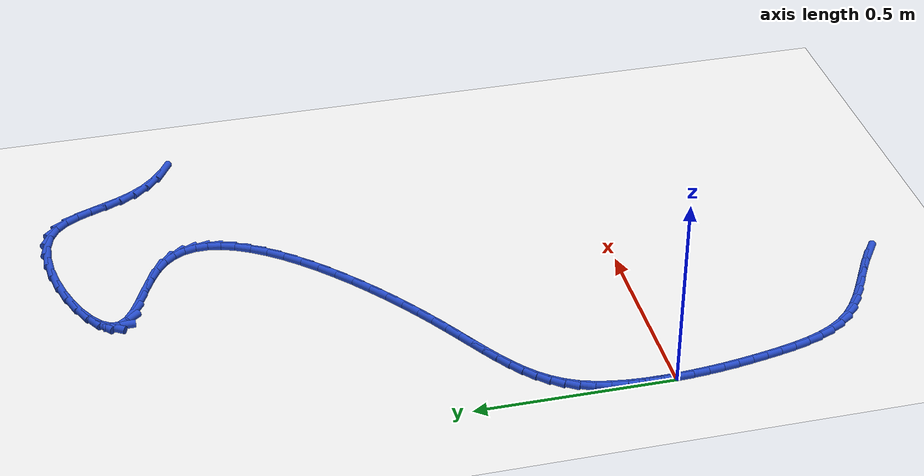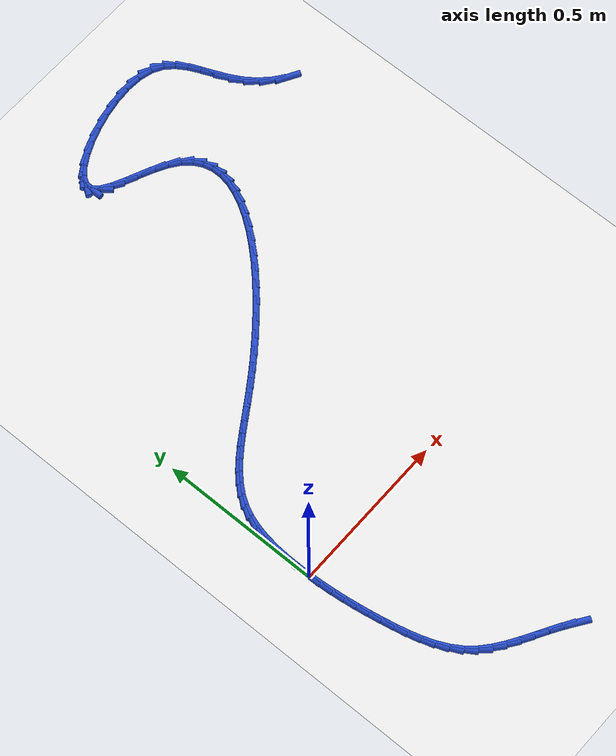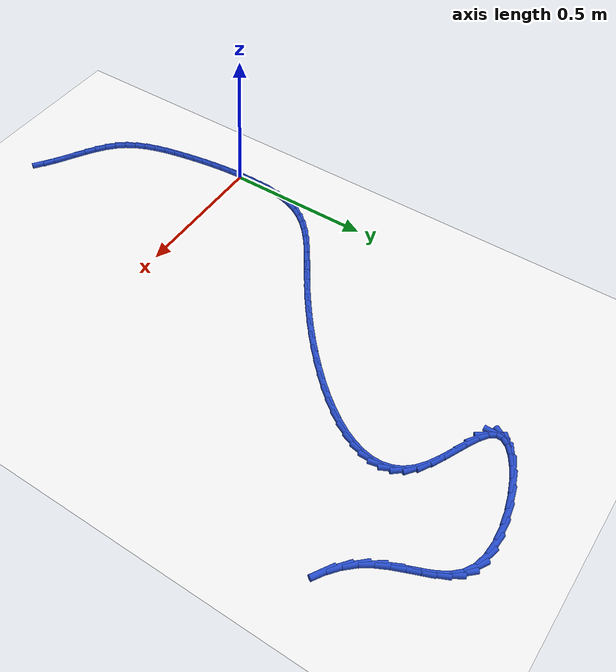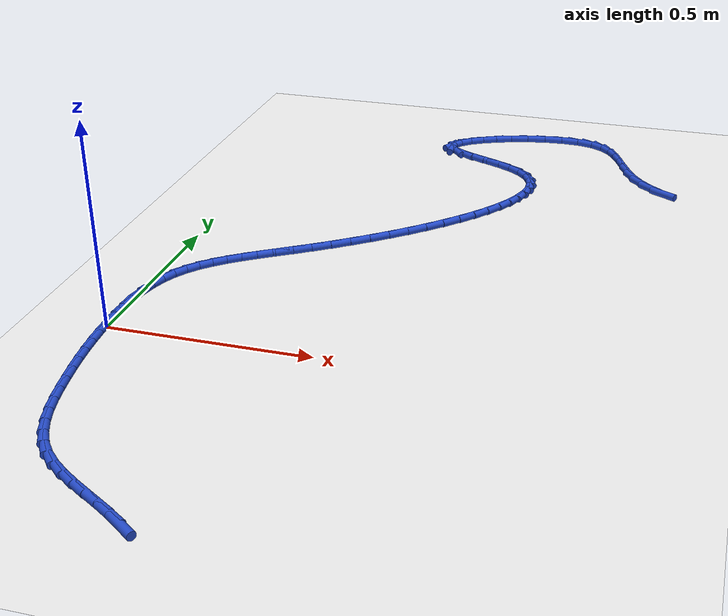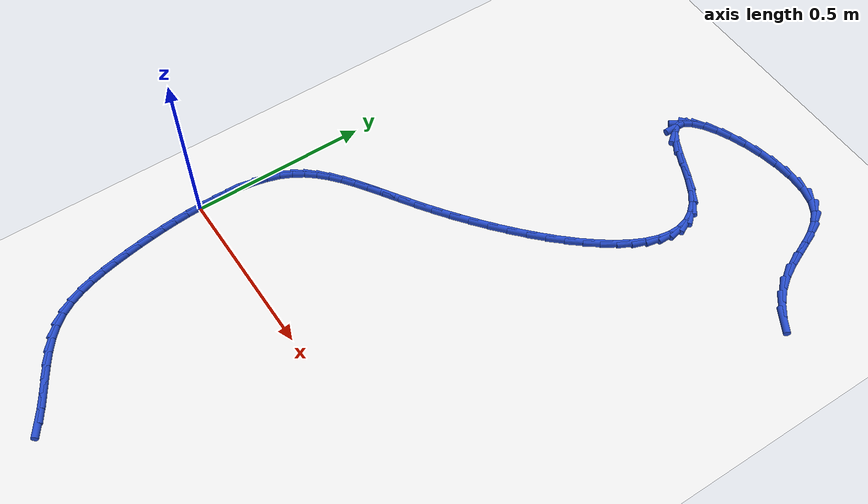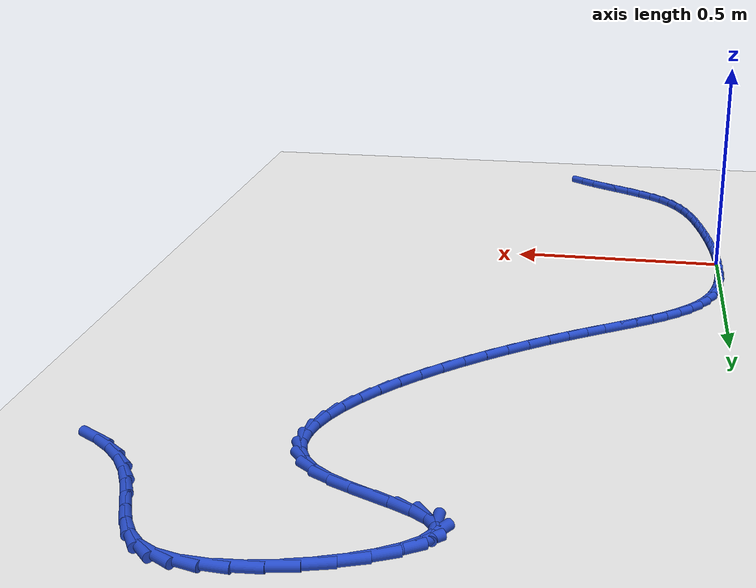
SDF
<sdf version="1.6">
 <world name="default">
  <model name="ground_plane">
   <static>1</static>
   <link name="link">
    <collision name="collision">
     <geometry><plane><normal>0 0 1</normal><size>100 100</size></plane></geometry>
     <surface><friction><ode><mu>100</mu><mu2>50</mu2></ode></friction></surface>
    </collision>
    <visual name="visual">
     <cast_shadows>0</cast_shadows>
     <geometry><plane><normal>0 0 1</normal><size>100 100</size></plane></geometry>
     <material>
      <script><uri>file://media/materials/scripts/gazebo.material</uri><name>Gazebo/WhiteGlow</name></script>
     </material>
    </visual>
   </link>
  </model>
  <model name="line">
   <link name="link_0">
    <pose>4.9873299934333204e-18 -6.938893903907228e-18 0.01 0 1.57 -1.5480635645796514</pose>
    <collision name="collision">
     <geometry><cylinder><radius>0.01</radius><length>0.08</length></cylinder></geometry>
    </collision>
    <visual name="visual">
     <material>
      <script><name>Gazebo/Blue</name><uri>file://media/materials/scripts/gazebo.material</uri></script>
     </material>
     <geometry><cylinder><radius>0.01</radius><length>0.08</length></cylinder></geometry>
    </visual>
   </link>
   <link name="link_1">
    <pose>-0.0009229600363917752 0.04059344102352836 0.01 0 1.57 1.5548282706293612</pose>
    <collision name="collision">
     <geometry><cylinder><radius>0.01</radius><length>0.08</length></cylinder></geometry>
    </collision>
    <visual name="visual">
     <material>
      <script><name>Gazebo/Blue</name><uri>file://media/materials/scripts/gazebo.material</uri></script>
     </material>
     <geometry><cylinder><radius>0.01</radius><length>0.08</length></cylinder></geometry>
    </visual>
   </link>
   <link name="link_2">
    <pose>-0.0002700726943167808 0.08147705538145811 0.01 0 1.57 1.5049284805671514</pose>
    <collision name="collision">
     <geometry><cylinder><radius>0.01</radius><length>0.08</length></cylinder></geometry>
    </collision>
    <visual name="visual">
     <material>
      <script><name>Gazebo/Blue</name><uri>file://media/materials/scripts/gazebo.material</uri></script>
     </material>
     <geometry><cylinder><radius>0.01</radius><length>0.08</length></cylinder></geometry>
    </visual>
   </link>
   <link name="link_3">
    <pose>0.0024001554686594066 0.1219575862958889 0.01 0 1.57 1.4412936719225298</pose>
    <collision name="collision">
     <geometry><cylinder><radius>0.01</radius><length>0.08</length></cylinder></geometry>
    </collision>
    <visual name="visual">
     <material>
      <script><name>Gazebo/Blue</name><uri>file://media/materials/scripts/gazebo.material</uri></script>
     </material>
     <geometry><cylinder><radius>0.01</radius><length>0.08</length></cylinder></geometry>
    </visual>
   </link>
   <link name="link_4">
    <pose>0.0075292178949712026 0.1613417769889203 0.01 0 1.57 1.360379430221691</pose>
    <collision name="collision">
     <geometry><cylinder><radius>0.01</radius><length>0.08</length></cylinder></geometry>
    </collision>
    <visual name="visual">
     <material>
      <script><name>Gazebo/Blue</name><uri>file://media/materials/scripts/gazebo.material</uri></script>
     </material>
     <geometry><cylinder><radius>0.01</radius><length>0.08</length></cylinder></geometry>
    </visual>
   </link>
   <link name="link_5">
    <pose>0.015558608027053025 0.1989363706826521 0.01 0 1.57 1.2575978438960318</pose>
    <collision name="collision">
     <geometry><cylinder><radius>0.01</radius><length>0.08</length></cylinder></geometry>
    </collision>
    <visual name="visual">
     <material>
      <script><name>Gazebo/Blue</name><uri>file://media/materials/scripts/gazebo.material</uri></script>
     </material>
     <geometry><cylinder><radius>0.01</radius><length>0.08</length></cylinder></geometry>
    </visual>
   </link>
   <link name="link_6">
    <pose>0.026929819307339294 0.23404811059918393 0.01 0 1.57 1.13094103516065</pose>
    <collision name="collision">
     <geometry><cylinder><radius>0.01</radius><length>0.08</length></cylinder></geometry>
    </collision>
    <visual name="visual">
     <material>
      <script><name>Gazebo/Blue</name><uri>file://media/materials/scripts/gazebo.material</uri></script>
     </material>
     <geometry><cylinder><radius>0.01</radius><length>0.08</length></cylinder></geometry>
    </visual>
   </link>
   <link name="link_7">
    <pose>0.042015793141415195 0.2661047475424821 0.01 0 1.57 1.0006326228099576</pose>
    <collision name="collision">
     <geometry><cylinder><radius>0.01</radius><length>0.08</length></cylinder></geometry>
    </collision>
    <visual name="visual">
     <material>
      <script><name>Gazebo/Blue</name><uri>file://media/materials/scripts/gazebo.material</uri></script>
     </material>
     <geometry><cylinder><radius>0.01</radius><length>0.08</length></cylinder></geometry>
    </visual>
   </link>
   <link name="link_8">
    <pose>0.06074627015875192 0.29531636726473653 0.01 0 1.57 0.8821932592368898</pose>
    <collision name="collision">
     <geometry><cylinder><radius>0.01</radius><length>0.08</length></cylinder></geometry>
    </collision>
    <visual name="visual">
     <material>
      <script><name>Gazebo/Blue</name><uri>file://media/materials/scripts/gazebo.material</uri></script>
     </material>
     <geometry><cylinder><radius>0.01</radius><length>0.08</length></cylinder></geometry>
    </visual>
   </link>
   <link name="link_9">
    <pose>0.082874712873556 0.3222042204294159 0.01 0 1.57 0.7815604918993285</pose>
    <collision name="collision">
     <geometry><cylinder><radius>0.01</radius><length>0.08</length></cylinder></geometry>
    </collision>
    <visual name="visual">
     <material>
      <script><name>Gazebo/Blue</name><uri>file://media/materials/scripts/gazebo.material</uri></script>
     </material>
     <geometry><cylinder><radius>0.01</radius><length>0.08</length></cylinder></geometry>
    </visual>
   </link>
   <link name="link_10">
    <pose>0.10815413310473726 0.3472903532642135 0.01 0 1.57 0.7014076883443885</pose>
    <collision name="collision">
     <geometry><cylinder><radius>0.01</radius><length>0.08</length></cylinder></geometry>
    </collision>
    <visual name="visual">
     <material>
      <script><name>Gazebo/Blue</name><uri>file://media/materials/scripts/gazebo.material</uri></script>
     </material>
     <geometry><cylinder><radius>0.01</radius><length>0.08</length></cylinder></geometry>
    </visual>
   </link>
   <link name="link_11">
    <pose>0.13633754267120546 0.37109681199682254 0.01 0 1.57 0.6418081495975494</pose>
    <collision name="collision">
     <geometry><cylinder><radius>0.01</radius><length>0.08</length></cylinder></geometry>
    </collision>
    <visual name="visual">
     <material>
      <script><name>Gazebo/Blue</name><uri>file://media/materials/scripts/gazebo.material</uri></script>
     </material>
     <geometry><cylinder><radius>0.01</radius><length>0.08</length></cylinder></geometry>
    </visual>
   </link>
   <link name="link_12">
    <pose>0.16717795339187047 0.3941456428549365 0.01 0 1.57 0.6013387917738968</pose>
    <collision name="collision">
     <geometry><cylinder><radius>0.01</radius><length>0.08</length></cylinder></geometry>
    </collision>
    <visual name="visual">
     <material>
      <script><name>Gazebo/Blue</name><uri>file://media/materials/scripts/gazebo.material</uri></script>
     </material>
     <geometry><cylinder><radius>0.01</radius><length>0.08</length></cylinder></geometry>
    </visual>
   </link>
   <link name="link_13">
    <pose>0.20042837708564198 0.4169588920662482 0.01 0 1.57 0.5779809115850214</pose>
    <collision name="collision">
     <geometry><cylinder><radius>0.01</radius><length>0.08</length></cylinder></geometry>
    </collision>
    <visual name="visual">
     <material>
      <script><name>Gazebo/Blue</name><uri>file://media/materials/scripts/gazebo.material</uri></script>
     </material>
     <geometry><cylinder><radius>0.01</radius><length>0.08</length></cylinder></geometry>
    </visual>
   </link>
   <link name="link_14">
    <pose>0.23584182557142985 0.4400586058584511 0.01 0 1.57 0.5696429249281969</pose>
    <collision name="collision">
     <geometry><cylinder><radius>0.01</radius><length>0.08</length></cylinder></geometry>
    </collision>
    <visual name="visual">
     <material>
      <script><name>Gazebo/Blue</name><uri>file://media/materials/scripts/gazebo.material</uri></script>
     </material>
     <geometry><cylinder><radius>0.01</radius><length>0.08</length></cylinder></geometry>
    </visual>
   </link>
   <link name="link_15">
    <pose>0.27317131066814393 0.4639668304592385 0.01 0 1.57 0.5743850118716567</pose>
    <collision name="collision">
     <geometry><cylinder><radius>0.01</radius><length>0.08</length></cylinder></geometry>
    </collision>
    <visual name="visual">
     <material>
      <script><name>Gazebo/Blue</name><uri>file://media/materials/scripts/gazebo.material</uri></script>
     </material>
     <geometry><cylinder><radius>0.01</radius><length>0.08</length></cylinder></geometry>
    </visual>
   </link>
   <link name="link_16">
    <pose>0.3121698441946939 0.4892056120963036 0.01 0 1.57 0.5904657292362538</pose>
    <collision name="collision">
     <geometry><cylinder><radius>0.01</radius><length>0.08</length></cylinder></geometry>
    </collision>
    <visual name="visual">
     <material>
      <script><name>Gazebo/Blue</name><uri>file://media/materials/scripts/gazebo.material</uri></script>
     </material>
     <geometry><cylinder><radius>0.01</radius><length>0.08</length></cylinder></geometry>
    </visual>
   </link>
   <link name="link_17">
    <pose>0.35259029793988755 0.516296627927061 0.01 0 1.57 0.6140329280952556</pose>
    <collision name="collision">
     <geometry><cylinder><radius>0.01</radius><length>0.08</length></cylinder></geometry>
    </collision>
    <visual name="visual">
     <material>
      <script><name>Gazebo/Blue</name><uri>file://media/materials/scripts/gazebo.material</uri></script>
     </material>
     <geometry><cylinder><radius>0.01</radius><length>0.08</length></cylinder></geometry>
    </visual>
   </link>
   <link name="link_18">
    <pose>0.39411156914956247 0.5455665841362922 0.01 0 1.57 0.6386442907082173</pose>
    <collision name="collision">
     <geometry><cylinder><radius>0.01</radius><length>0.08</length></cylinder></geometry>
    </collision>
    <visual name="visual">
     <material>
      <script><name>Gazebo/Blue</name><uri>file://media/materials/scripts/gazebo.material</uri></script>
     </material>
     <geometry><cylinder><radius>0.01</radius><length>0.08</length></cylinder></geometry>
    </visual>
   </link>
   <link name="link_19">
    <pose>0.43621727119226417 0.5768274870408742 0.01 0 1.57 0.6640357894327094</pose>
    <collision name="collision">
     <geometry><cylinder><radius>0.01</radius><length>0.08</length></cylinder></geometry>
    </collision>
    <visual name="visual">
     <material>
      <script><name>Gazebo/Blue</name><uri>file://media/materials/scripts/gazebo.material</uri></script>
     </material>
     <geometry><cylinder><radius>0.01</radius><length>0.08</length></cylinder></geometry>
    </visual>
   </link>
   <link name="link_20">
    <pose>0.4783591669392957 0.6098073962082097 0.01 0 1.57 0.6909758881749642</pose>
    <collision name="collision">
     <geometry><cylinder><radius>0.01</radius><length>0.08</length></cylinder></geometry>
    </collision>
    <visual name="visual">
     <material>
      <script><name>Gazebo/Blue</name><uri>file://media/materials/scripts/gazebo.material</uri></script>
     </material>
     <geometry><cylinder><radius>0.01</radius><length>0.08</length></cylinder></geometry>
    </visual>
   </link>
   <link name="link_21">
    <pose>0.5199890192619602 0.6442343712057014 0.01 0 1.57 0.7202762208391208</pose>
    <collision name="collision">
     <geometry><cylinder><radius>0.01</radius><length>0.08</length></cylinder></geometry>
    </collision>
    <visual name="visual">
     <material>
      <script><name>Gazebo/Blue</name><uri>file://media/materials/scripts/gazebo.material</uri></script>
     </material>
     <geometry><cylinder><radius>0.01</radius><length>0.08</length></cylinder></geometry>
    </visual>
   </link>
   <link name="link_22">
    <pose>0.5605585910315608 0.6798364716007519 0.01 0 1.57 0.7528683962873446</pose>
    <collision name="collision">
     <geometry><cylinder><radius>0.01</radius><length>0.08</length></cylinder></geometry>
    </collision>
    <visual name="visual">
     <material>
      <script><name>Gazebo/Blue</name><uri>file://media/materials/scripts/gazebo.material</uri></script>
     </material>
     <geometry><cylinder><radius>0.01</radius><length>0.08</length></cylinder></geometry>
    </visual>
   </link>
   <link name="link_23">
    <pose>0.5995196451194006 0.7163417569607639 0.01 0 1.57 0.7898913288511158</pose>
    <collision name="collision">
     <geometry><cylinder><radius>0.01</radius><length>0.08</length></cylinder></geometry>
    </collision>
    <visual name="visual">
     <material>
      <script><name>Gazebo/Blue</name><uri>file://media/materials/scripts/gazebo.material</uri></script>
     </material>
     <geometry><cylinder><radius>0.01</radius><length>0.08</length></cylinder></geometry>
    </visual>
   </link>
   <link name="link_24">
    <pose>0.6363239443967829 0.7534782868531401 0.01 0 1.57 0.8328033633133962</pose>
    <collision name="collision">
     <geometry><cylinder><radius>0.01</radius><length>0.08</length></cylinder></geometry>
    </collision>
    <visual name="visual">
     <material>
      <script><name>Gazebo/Blue</name><uri>file://media/materials/scripts/gazebo.material</uri></script>
     </material>
     <geometry><cylinder><radius>0.01</radius><length>0.08</length></cylinder></geometry>
    </visual>
   </link>
   <link name="link_25">
    <pose>0.6704232517350104 0.7909741208452833 0.01 0 1.57 0.8835356502385009</pose>
    <collision name="collision">
     <geometry><cylinder><radius>0.01</radius><length>0.08</length></cylinder></geometry>
    </collision>
    <visual name="visual">
     <material>
      <script><name>Gazebo/Blue</name><uri>file://media/materials/scripts/gazebo.material</uri></script>
     </material>
     <geometry><cylinder><radius>0.01</radius><length>0.08</length></cylinder></geometry>
    </visual>
   </link>
   <link name="link_26">
    <pose>0.7012693300053867 0.8285573185045962 0.01 0 1.57 0.9447053411816257</pose>
    <collision name="collision">
     <geometry><cylinder><radius>0.01</radius><length>0.08</length></cylinder></geometry>
    </collision>
    <visual name="visual">
     <material>
      <script><name>Gazebo/Blue</name><uri>file://media/materials/scripts/gazebo.material</uri></script>
     </material>
     <geometry><cylinder><radius>0.01</radius><length>0.08</length></cylinder></geometry>
    </visual>
   </link>
   <link name="link_27">
    <pose>0.728313942079215 0.8659559393984819 0.01 0 1.57 1.0199014087999074</pose>
    <collision name="collision">
     <geometry><cylinder><radius>0.01</radius><length>0.08</length></cylinder></geometry>
    </collision>
    <visual name="visual">
     <material>
      <script><name>Gazebo/Blue</name><uri>file://media/materials/scripts/gazebo.material</uri></script>
     </material>
     <geometry><cylinder><radius>0.01</radius><length>0.08</length></cylinder></geometry>
    </visual>
   </link>
   <link name="link_28">
    <pose>0.7510088508277979 0.9028980430943424 0.01 0 1.57 1.1140171557062835</pose>
    <collision name="collision">
     <geometry><cylinder><radius>0.01</radius><length>0.08</length></cylinder></geometry>
    </collision>
    <visual name="visual">
     <material>
      <script><name>Gazebo/Blue</name><uri>file://media/materials/scripts/gazebo.material</uri></script>
     </material>
     <geometry><cylinder><radius>0.01</radius><length>0.08</length></cylinder></geometry>
    </visual>
   </link>
   <link name="link_29">
    <pose>0.7688058191224388 0.9391116891595807 0.01 0 1.57 1.2334599864878217</pose>
    <collision name="collision">
     <geometry><cylinder><radius>0.01</radius><length>0.08</length></cylinder></geometry>
    </collision>
    <visual name="visual">
     <material>
      <script><name>Gazebo/Blue</name><uri>file://media/materials/scripts/gazebo.material</uri></script>
     </material>
     <geometry><cylinder><radius>0.01</radius><length>0.08</length></cylinder></geometry>
    </visual>
   </link>
   <link name="link_30">
    <pose>0.7811566098344409 0.9743249371615997 0.01 0 1.57 1.38566312047637</pose>
    <collision name="collision">
     <geometry><cylinder><radius>0.01</radius><length>0.08</length></cylinder></geometry>
    </collision>
    <visual name="visual">
     <material>
      <script><name>Gazebo/Blue</name><uri>file://media/materials/scripts/gazebo.material</uri></script>
     </material>
     <geometry><cylinder><radius>0.01</radius><length>0.08</length></cylinder></geometry>
    </visual>
   </link>
   <link name="link_31">
    <pose>0.7875129858351073 1.0082658466678018 0.01 0 1.57 -1.565046537904039</pose>
    <collision name="collision">
     <geometry><cylinder><radius>0.01</radius><length>0.08</length></cylinder></geometry>
    </collision>
    <visual name="visual">
     <material>
      <script><name>Gazebo/Blue</name><uri>file://media/materials/scripts/gazebo.material</uri></script>
     </material>
     <geometry><cylinder><radius>0.01</radius><length>0.08</length></cylinder></geometry>
    </visual>
   </link>
   <link name="link_32">
    <pose>0.7873267099957412 1.0406624772455901 0.01 0 1.57 -1.3371733908192796</pose>
    <collision name="collision">
     <geometry><cylinder><radius>0.01</radius><length>0.08</length></cylinder></geometry>
    </collision>
    <visual name="visual">
     <material>
      <script><name>Gazebo/Blue</name><uri>file://media/materials/scripts/gazebo.material</uri></script>
     </material>
     <geometry><cylinder><radius>0.01</radius><length>0.08</length></cylinder></geometry>
    </visual>
   </link>
   <link name="link_33">
    <pose>0.7800495451876455 1.0712428884623666 0.01 0 1.57 -1.0885094915099842</pose>
    <collision name="collision">
     <geometry><cylinder><radius>0.01</radius><length>0.08</length></cylinder></geometry>
    </collision>
    <visual name="visual">
     <material>
      <script><name>Gazebo/Blue</name><uri>file://media/materials/scripts/gazebo.material</uri></script>
     </material>
     <geometry><cylinder><radius>0.01</radius><length>0.08</length></cylinder></geometry>
    </visual>
   </link>
   <link name="link_34">
    <pose>0.7651332542821235 1.099735139885535 0.01 0 1.57 -0.8468308192867534</pose>
    <collision name="collision">
     <geometry><cylinder><radius>0.01</radius><length>0.08</length></cylinder></geometry>
    </collision>
    <visual name="visual">
     <material>
      <script><name>Gazebo/Blue</name><uri>file://media/materials/scripts/gazebo.material</uri></script>
     </material>
     <geometry><cylinder><radius>0.01</radius><length>0.08</length></cylinder></geometry>
    </visual>
   </link>
   <link name="link_35">
    <pose>0.7420296001504784 1.1258672910824978 0.01 0 1.57 -0.6370304192301732</pose>
    <collision name="collision">
     <geometry><cylinder><radius>0.01</radius><length>0.08</length></cylinder></geometry>
    </collision>
    <visual name="visual">
     <material>
      <script><name>Gazebo/Blue</name><uri>file://media/materials/scripts/gazebo.material</uri></script>
     </material>
     <geometry><cylinder><radius>0.01</radius><length>0.08</length></cylinder></geometry>
    </visual>
   </link>
   <link name="link_36">
    <pose>0.7102517503253716 1.1493809372589332 0.01 0 1.57 -0.4959302152229993</pose>
    <collision name="collision">
     <geometry><cylinder><radius>0.01</radius><length>0.08</length></cylinder></geometry>
    </collision>
    <visual name="visual">
     <material>
      <script><name>Gazebo/Blue</name><uri>file://media/materials/scripts/gazebo.material</uri></script>
     </material>
     <geometry><cylinder><radius>0.01</radius><length>0.08</length></cylinder></geometry>
    </visual>
   </link>
   <link name="link_37">
    <pose>0.6712990695357276 1.1704554978214643 0.01 0 1.57 -0.42915011345294274</pose>
    <collision name="collision">
     <geometry><cylinder><radius>0.01</radius><length>0.08</length></cylinder></geometry>
    </collision>
    <visual name="visual">
     <material>
      <script><name>Gazebo/Blue</name><uri>file://media/materials/scripts/gazebo.material</uri></script>
     </material>
     <geometry><cylinder><radius>0.01</radius><length>0.08</length></cylinder></geometry>
    </visual>
   </link>
   <link name="link_38">
    <pose>0.629040482086128 1.189792722250363 0.01 0 1.57 -0.41545951307137086</pose>
    <collision name="collision">
     <geometry><cylinder><radius>0.01</radius><length>0.08</length></cylinder></geometry>
    </collision>
    <visual name="visual">
     <material>
      <script><name>Gazebo/Blue</name><uri>file://media/materials/scripts/gazebo.material</uri></script>
     </material>
     <geometry><cylinder><radius>0.01</radius><length>0.08</length></cylinder></geometry>
    </visual>
   </link>
   <link name="link_39">
    <pose>0.5874837387922698 1.2081249620257482 0.01 0 1.57 -0.4557142152066989</pose>
    <collision name="collision">
     <geometry><cylinder><radius>0.01</radius><length>0.08</length></cylinder></geometry>
    </collision>
    <visual name="visual">
     <material>
      <script><name>Gazebo/Blue</name><uri>file://media/materials/scripts/gazebo.material</uri></script>
     </material>
     <geometry><cylinder><radius>0.01</radius><length>0.08</length></cylinder></geometry>
    </visual>
   </link>
   <link name="link_40">
    <pose>0.5506365904698498 1.2261845686277382 0.01 0 1.57 -0.582224511144512</pose>
    <collision name="collision">
     <geometry><cylinder><radius>0.01</radius><length>0.08</length></cylinder></geometry>
    </collision>
    <visual name="visual">
     <material>
      <script><name>Gazebo/Blue</name><uri>file://media/materials/scripts/gazebo.material</uri></script>
     </material>
     <geometry><cylinder><radius>0.01</radius><length>0.08</length></cylinder></geometry>
    </visual>
   </link>
   <link name="link_41">
    <pose>0.5225067879345647 1.2447038935364532 0.01 0 1.57 -0.9074292882225848</pose>
    <collision name="collision">
     <geometry><cylinder><radius>0.01</radius><length>0.08</length></cylinder></geometry>
    </collision>
    <visual name="visual">
     <material>
      <script><name>Gazebo/Blue</name><uri>file://media/materials/scripts/gazebo.material</uri></script>
     </material>
     <geometry><cylinder><radius>0.01</radius><length>0.08</length></cylinder></geometry>
    </visual>
   </link>
   <link name="link_42">
    <pose>0.5071020579172593 1.2644152819043875 0.01 0 1.57 1.5619311502329325</pose>
    <collision name="collision">
     <geometry><cylinder><radius>0.01</radius><length>0.08</length></cylinder></geometry>
    </collision>
    <visual name="visual">
     <material>
      <script><name>Gazebo/Blue</name><uri>file://media/materials/scripts/gazebo.material</uri></script>
     </material>
     <geometry><cylinder><radius>0.01</radius><length>0.08</length></cylinder></geometry>
    </visual>
   </link>
   <link name="link_43">
    <pose>0.5072912154181342 1.285751861513983 0.01 0 1.57 0.9951732054812551</pose>
    <collision name="collision">
     <geometry><cylinder><radius>0.01</radius><length>0.08</length></cylinder></geometry>
    </collision>
    <visual name="visual">
     <material>
      <script><name>Gazebo/Blue</name><uri>file://media/materials/scripts/gazebo.material</uri></script>
     </material>
     <geometry><cylinder><radius>0.01</radius><length>0.08</length></cylinder></geometry>
    </visual>
   </link>
   <link name="link_44">
    <pose>0.521759657993905 1.3080476836068136 0.01 0 1.57 0.7008625635395084</pose>
    <collision name="collision">
     <geometry><cylinder><radius>0.01</radius><length>0.08</length></cylinder></geometry>
    </collision>
    <visual name="visual">
     <material>
      <script><name>Gazebo/Blue</name><uri>file://media/materials/scripts/gazebo.material</uri></script>
     </material>
     <geometry><cylinder><radius>0.01</radius><length>0.08</length></cylinder></geometry>
    </visual>
   </link>
   <link name="link_45">
    <pose>0.5482324966794412 1.3303845108582433 0.01 0 1.57 0.5350849434351569</pose>
    <collision name="collision">
     <geometry><cylinder><radius>0.01</radius><length>0.08</length></cylinder></geometry>
    </collision>
    <visual name="visual">
     <material>
      <script><name>Gazebo/Blue</name><uri>file://media/materials/scripts/gazebo.material</uri></script>
     </material>
     <geometry><cylinder><radius>0.01</radius><length>0.08</length></cylinder></geometry>
    </visual>
   </link>
   <link name="link_46">
    <pose>0.5844348425096134 1.3518441059436375 0.01 0 1.57 0.4232061116509862</pose>
    <collision name="collision">
     <geometry><cylinder><radius>0.01</radius><length>0.08</length></cylinder></geometry>
    </collision>
    <visual name="visual">
     <material>
      <script><name>Gazebo/Blue</name><uri>file://media/materials/scripts/gazebo.material</uri></script>
     </material>
     <geometry><cylinder><radius>0.01</radius><length>0.08</length></cylinder></geometry>
    </visual>
   </link>
   <link name="link_47">
    <pose>0.6280918065192911 1.3715082315383598 0.01 0 1.57 0.33407439497958863</pose>
    <collision name="collision">
     <geometry><cylinder><radius>0.01</radius><length>0.08</length></cylinder></geometry>
    </collision>
    <visual name="visual">
     <material>
      <script><name>Gazebo/Blue</name><uri>file://media/materials/scripts/gazebo.material</uri></script>
     </material>
     <geometry><cylinder><radius>0.01</radius><length>0.08</length></cylinder></geometry>
    </visual>
   </link>
   <link name="link_48">
    <pose>0.6769284997433443 1.3884586503177745 0.01 0 1.57 0.25193484757584</pose>
    <collision name="collision">
     <geometry><cylinder><radius>0.01</radius><length>0.08</length></cylinder></geometry>
    </collision>
    <visual name="visual">
     <material>
      <script><name>Gazebo/Blue</name><uri>file://media/materials/scripts/gazebo.material</uri></script>
     </material>
     <geometry><cylinder><radius>0.01</radius><length>0.08</length></cylinder></geometry>
    </visual>
   </link>
   <link name="link_49">
    <pose>0.728670033216643 1.401777124957246 0.01 0 1.57 0.16588637497811437</pose>
    <collision name="collision">
     <geometry><cylinder><radius>0.01</radius><length>0.08</length></cylinder></geometry>
    </collision>
    <visual name="visual">
     <material>
      <script><name>Gazebo/Blue</name><uri>file://media/materials/scripts/gazebo.material</uri></script>
     </material>
     <geometry><cylinder><radius>0.01</radius><length>0.08</length></cylinder></geometry>
    </visual>
   </link>
   <link name="link_50">
    <pose>0.7810415179740574 1.410545418132139 0.01 0 1.57 0.06496068756718525</pose>
    <collision name="collision">
     <geometry><cylinder><radius>0.01</radius><length>0.08</length></cylinder></geometry>
    </collision>
    <visual name="visual">
     <material>
      <script><name>Gazebo/Blue</name><uri>file://media/materials/scripts/gazebo.material</uri></script>
     </material>
     <geometry><cylinder><radius>0.01</radius><length>0.08</length></cylinder></geometry>
    </visual>
   </link>
   <link name="link_51">
    <pose>0.8317680650504571 1.4138452925178175 0.01 0 1.57 -0.06585205017736295</pose>
    <collision name="collision">
     <geometry><cylinder><radius>0.01</radius><length>0.08</length></cylinder></geometry>
    </collision>
    <visual name="visual">
     <material>
      <script><name>Gazebo/Blue</name><uri>file://media/materials/scripts/gazebo.material</uri></script>
     </material>
     <geometry><cylinder><radius>0.01</radius><length>0.08</length></cylinder></geometry>
    </visual>
   </link>
   <link name="link_52">
    <pose>0.878574785480712 1.4107585107896463 0.01 0 1.57 -0.25050219834039555</pose>
    <collision name="collision">
     <geometry><cylinder><radius>0.01</radius><length>0.08</length></cylinder></geometry>
    </collision>
    <visual name="visual">
     <material>
      <script><name>Gazebo/Blue</name><uri>file://media/materials/scripts/gazebo.material</uri></script>
     </material>
     <geometry><cylinder><radius>0.01</radius><length>0.08</length></cylinder></geometry>
    </visual>
   </link>
   <link name="link_53">
    <pose>0.919186790299692 1.4003668356229892 0.01 0 1.57 -0.5156828926272555</pose>
    <collision name="collision">
     <geometry><cylinder><radius>0.01</radius><length>0.08</length></cylinder></geometry>
    </collision>
    <visual name="visual">
     <material>
      <script><name>Gazebo/Blue</name><uri>file://media/materials/scripts/gazebo.material</uri></script>
     </material>
     <geometry><cylinder><radius>0.01</radius><length>0.08</length></cylinder></geometry>
    </visual>
   </link>
   <link name="link_54">
    <pose>0.9516770507973036 1.3819499407858444 0.01 0 1.57 -0.7939372054560259</pose>
    <collision name="collision">
     <geometry><cylinder><radius>0.01</radius><length>0.08</length></cylinder></geometry>
    </collision>
    <visual name="visual">
     <material>
      <script><name>Gazebo/Blue</name><uri>file://media/materials/scripts/gazebo.material</uri></script>
     </material>
     <geometry><cylinder><radius>0.01</radius><length>0.08</length></cylinder></geometry>
    </visual>
   </link>
   <link name="link_55">
    <pose>0.9768511592827533 1.3563421933572517 0.01 0 1.57 -1.0022200515110102</pose>
    <collision name="collision">
     <geometry><cylinder><radius>0.01</radius><length>0.08</length></cylinder></geometry>
    </collision>
    <visual name="visual">
     <material>
      <script><name>Gazebo/Blue</name><uri>file://media/materials/scripts/gazebo.material</uri></script>
     </material>
     <geometry><cylinder><radius>0.01</radius><length>0.08</length></cylinder></geometry>
    </visual>
   </link>
   <link name="link_56">
    <pose>0.9968057489504735 1.325112483284359 0.01 0 1.57 -1.1254508425453265</pose>
    <collision name="collision">
     <geometry><cylinder><radius>0.01</radius><length>0.08</length></cylinder></geometry>
    </collision>
    <visual name="visual">
     <material>
      <script><name>Gazebo/Blue</name><uri>file://media/materials/scripts/gazebo.material</uri></script>
     </material>
     <geometry><cylinder><radius>0.01</radius><length>0.08</length></cylinder></geometry>
    </visual>
   </link>
   <link name="link_57">
    <pose>1.0136451058212073 1.2898340545018536 0.01 0 1.57 -1.1738041061889504</pose>
    <collision name="collision">
     <geometry><cylinder><radius>0.01</radius><length>0.08</length></cylinder></geometry>
    </collision>
    <visual name="visual">
     <material>
      <script><name>Gazebo/Blue</name><uri>file://media/materials/scripts/gazebo.material</uri></script>
     </material>
     <geometry><cylinder><radius>0.01</radius><length>0.08</length></cylinder></geometry>
    </visual>
   </link>
   <link name="link_58">
    <pose>1.0294735159156985 1.252080150944426 0.01 0 1.57 -1.1581754929664165</pose>
    <collision name="collision">
     <geometry><cylinder><radius>0.01</radius><length>0.08</length></cylinder></geometry>
    </collision>
    <visual name="visual">
     <material>
      <script><name>Gazebo/Blue</name><uri>file://media/materials/scripts/gazebo.material</uri></script>
     </material>
     <geometry><cylinder><radius>0.01</radius><length>0.08</length></cylinder></geometry>
    </visual>
   </link>
   <link name="link_59">
    <pose>1.046395265254691 1.2134240165467645 0.01 0 1.57 -1.083699620009665</pose>
    <collision name="collision">
     <geometry><cylinder><radius>0.01</radius><length>0.08</length></cylinder></geometry>
    </collision>
    <visual name="visual">
     <material>
      <script><name>Gazebo/Blue</name><uri>file://media/materials/scripts/gazebo.material</uri></script>
     </material>
     <geometry><cylinder><radius>0.01</radius><length>0.08</length></cylinder></geometry>
    </visual>
   </link>
   <link name="link_60">
    <pose>1.0665146398589287 1.1754388952435593 0.01 0 1.57 -0.9526578173562713</pose>
    <collision name="collision">
     <geometry><cylinder><radius>0.01</radius><length>0.08</length></cylinder></geometry>
    </collision>
    <visual name="visual">
     <material>
      <script><name>Gazebo/Blue</name><uri>file://media/materials/scripts/gazebo.material</uri></script>
     </material>
     <geometry><cylinder><radius>0.01</radius><length>0.08</length></cylinder></geometry>
    </visual>
   </link>
   <link name="link_61">
    <pose>1.0919311831659992 1.1396964485971963 0.01 0 1.57 -0.7918750370406433</pose>
    <collision name="collision">
     <geometry><cylinder><radius>0.01</radius><length>0.08</length></cylinder></geometry>
    </collision>
    <visual name="visual">
     <material>
      <script><name>Gazebo/Blue</name><uri>file://media/materials/scripts/gazebo.material</uri></script>
     </material>
     <geometry><cylinder><radius>0.01</radius><length>0.08</length></cylinder></geometry>
    </visual>
   </link>
   <link name="link_62">
    <pose>1.1237694731234942 1.10744303899532 0.01 0 1.57 -0.6489936199285218</pose>
    <collision name="collision">
     <geometry><cylinder><radius>0.01</radius><length>0.08</length></cylinder></geometry>
    </collision>
    <visual name="visual">
     <material>
      <script><name>Gazebo/Blue</name><uri>file://media/materials/scripts/gazebo.material</uri></script>
     </material>
     <geometry><cylinder><radius>0.01</radius><length>0.08</length></cylinder></geometry>
    </visual>
   </link>
   <link name="link_63">
    <pose>1.1609935836100305 1.0792041723461596 0.01 0 1.57 -0.5228771626686369</pose>
    <collision name="collision">
     <geometry><cylinder><radius>0.01</radius><length>0.08</length></cylinder></geometry>
    </collision>
    <visual name="visual">
     <material>
      <script><name>Gazebo/Blue</name><uri>file://media/materials/scripts/gazebo.material</uri></script>
     </material>
     <geometry><cylinder><radius>0.01</radius><length>0.08</length></cylinder></geometry>
    </visual>
   </link>
   <link name="link_240">
    <pose>0.36451282700714444 -0.638480142342934 0.01 0 1.57 -0.6003766253967535</pose>
    <collision name="collision">
     <geometry><cylinder><radius>0.01</radius><length>0.08</length></cylinder></geometry>
    </collision>
    <visual name="visual">
     <material>
      <script><name>Gazebo/Blue</name><uri>file://media/materials/scripts/gazebo.material</uri></script>
     </material>
     <geometry><cylinder><radius>0.01</radius><length>0.08</length></cylinder></geometry>
    </visual>
   </link>
   <link name="link_241">
    <pose>0.33155420395731683 -0.61591370756496 0.01 0 1.57 -0.5473025785859358</pose>
    <collision name="collision">
     <geometry><cylinder><radius>0.01</radius><length>0.08</length></cylinder></geometry>
    </collision>
    <visual name="visual">
     <material>
      <script><name>Gazebo/Blue</name><uri>file://media/materials/scripts/gazebo.material</uri></script>
     </material>
     <geometry><cylinder><radius>0.01</radius><length>0.08</length></cylinder></geometry>
    </visual>
   </link>
   <link name="link_242">
    <pose>0.2969662471487906 -0.5948358082307817 0.01 0 1.57 -0.5237605295382856</pose>
    <collision name="collision">
     <geometry><cylinder><radius>0.01</radius><length>0.08</length></cylinder></geometry>
    </collision>
    <visual name="visual">
     <material>
      <script><name>Gazebo/Blue</name><uri>file://media/materials/scripts/gazebo.material</uri></script>
     </material>
     <geometry><cylinder><radius>0.01</radius><length>0.08</length></cylinder></geometry>
    </visual>
   </link>
   <link name="link_243">
    <pose>0.2616766547172941 -0.5744537408557984 0.01 0 1.57 -0.5286107883239384</pose>
    <collision name="collision">
     <geometry><cylinder><radius>0.01</radius><length>0.08</length></cylinder></geometry>
    </collision>
    <visual name="visual">
     <material>
      <script><name>Gazebo/Blue</name><uri>file://media/materials/scripts/gazebo.material</uri></script>
     </material>
     <geometry><cylinder><radius>0.01</radius><length>0.08</length></cylinder></geometry>
    </visual>
   </link>
   <link name="link_244">
    <pose>0.22661312479855578 -0.5539748019554092 0.01 0 1.57 -0.5622998756590876</pose>
    <collision name="collision">
     <geometry><cylinder><radius>0.01</radius><length>0.08</length></cylinder></geometry>
    </collision>
    <visual name="visual">
     <material>
      <script><name>Gazebo/Blue</name><uri>file://media/materials/scripts/gazebo.material</uri></script>
     </material>
     <geometry><cylinder><radius>0.01</radius><length>0.08</length></cylinder></geometry>
    </visual>
   </link>
   <link name="link_245">
    <pose>0.1927033555283029 -0.5326062880450129 0.01 0 1.57 -0.6267986614463953</pose>
    <collision name="collision">
     <geometry><cylinder><radius>0.01</radius><length>0.08</length></cylinder></geometry>
    </collision>
    <visual name="visual">
     <material>
      <script><name>Gazebo/Blue</name><uri>file://media/materials/scripts/gazebo.material</uri></script>
     </material>
     <geometry><cylinder><radius>0.01</radius><length>0.08</length></cylinder></geometry>
    </visual>
   </link>
   <link name="link_246">
    <pose>0.16087504504226594 -0.5095554956400102 0.01 0 1.57 -0.7248707786377757</pose>
    <collision name="collision">
     <geometry><cylinder><radius>0.01</radius><length>0.08</length></cylinder></geometry>
    </collision>
    <visual name="visual">
     <material>
      <script><name>Gazebo/Blue</name><uri>file://media/materials/scripts/gazebo.material</uri></script>
     </material>
     <geometry><cylinder><radius>0.01</radius><length>0.08</length></cylinder></geometry>
    </visual>
   </link>
   <link name="link_247">
    <pose>0.13205589147617225 -0.4840297212557998 0.01 0 1.57 -0.8578392894193647</pose>
    <collision name="collision">
     <geometry><cylinder><radius>0.01</radius><length>0.08</length></cylinder></geometry>
    </collision>
    <visual name="visual">
     <material>
      <script><name>Gazebo/Blue</name><uri>file://media/materials/scripts/gazebo.material</uri></script>
     </material>
     <geometry><cylinder><radius>0.01</radius><length>0.08</length></cylinder></geometry>
    </visual>
   </link>
   <link name="link_248">
    <pose>0.10716553165664644 -0.45524420455612125 0.01 0 1.57 -1.0030092142525393</pose>
    <collision name="collision">
     <geometry><cylinder><radius>0.01</radius><length>0.08</length></cylinder></geometry>
    </collision>
    <visual name="visual">
     <material>
      <script><name>Gazebo/Blue</name><uri>file://media/materials/scripts/gazebo.material</uri></script>
     </material>
     <geometry><cylinder><radius>0.01</radius><length>0.08</length></cylinder></geometry>
    </visual>
   </link>
   <link name="link_249">
    <pose>0.08657172734306573 -0.422957971017649 0.01 0 1.57 -1.1242598155163872</pose>
    <collision name="collision">
     <geometry><cylinder><radius>0.01</radius><length>0.08</length></cylinder></geometry>
    </collision>
    <visual name="visual">
     <material>
      <script><name>Gazebo/Blue</name><uri>file://media/materials/scripts/gazebo.material</uri></script>
     </material>
     <geometry><cylinder><radius>0.01</radius><length>0.08</length></cylinder></geometry>
    </visual>
   </link>
   <link name="link_250">
    <pose>0.06974513037418317 -0.387814006412478 0.01 0 1.57 -1.219291864079605</pose>
    <collision name="collision">
     <geometry><cylinder><radius>0.01</radius><length>0.08</length></cylinder></geometry>
    </collision>
    <visual name="visual">
     <material>
      <script><name>Gazebo/Blue</name><uri>file://media/materials/scripts/gazebo.material</uri></script>
     </material>
     <geometry><cylinder><radius>0.01</radius><length>0.08</length></cylinder></geometry>
    </visual>
   </link>
   <link name="link_251">
    <pose>0.05607413305671435 -0.35053635030396024 0.01 0 1.57 -1.29074135549804</pose>
    <collision name="collision">
     <geometry><cylinder><radius>0.01</radius><length>0.08</length></cylinder></geometry>
    </collision>
    <visual name="visual">
     <material>
      <script><name>Gazebo/Blue</name><uri>file://media/materials/scripts/gazebo.material</uri></script>
     </material>
     <geometry><cylinder><radius>0.01</radius><length>0.08</length></cylinder></geometry>
    </visual>
   </link>
   <link name="link_252">
    <pose>0.04494712769737445 -0.31184904225544635 0.01 0 1.57 -1.3413811894205532</pose>
    <collision name="collision">
     <geometry><cylinder><radius>0.01</radius><length>0.08</length></cylinder></geometry>
    </collision>
    <visual name="visual">
     <material>
      <script><name>Gazebo/Blue</name><uri>file://media/materials/scripts/gazebo.material</uri></script>
     </material>
     <geometry><cylinder><radius>0.01</radius><length>0.08</length></cylinder></geometry>
    </visual>
   </link>
   <link name="link_253">
    <pose>0.0357525066028797 -0.2724761218302907 0.01 0 1.57 -1.3732447879011664</pose>
    <collision name="collision">
     <geometry><cylinder><radius>0.01</radius><length>0.08</length></cylinder></geometry>
    </collision>
    <visual name="visual">
     <material>
      <script><name>Gazebo/Blue</name><uri>file://media/materials/scripts/gazebo.material</uri></script>
     </material>
     <geometry><cylinder><radius>0.01</radius><length>0.08</length></cylinder></geometry>
    </visual>
   </link>
   <link name="link_254">
    <pose>0.027879097393939577 -0.23314098116084558 0.01 0 1.57 -1.3925983024701338</pose>
    <collision name="collision">
     <geometry><cylinder><radius>0.01</radius><length>0.08</length></cylinder></geometry>
    </collision>
    <visual name="visual">
     <material>
      <script><name>Gazebo/Blue</name><uri>file://media/materials/scripts/gazebo.material</uri></script>
     </material>
     <geometry><cylinder><radius>0.01</radius><length>0.08</length></cylinder></geometry>
    </visual>
   </link>
   <link name="link_255">
    <pose>0.020885989797432985 -0.19431378604902316 0.01 0 1.57 -1.4129538883841297</pose>
    <collision name="collision">
     <geometry><cylinder><radius>0.01</radius><length>0.08</length></cylinder></geometry>
    </collision>
    <visual name="visual">
     <material>
      <script><name>Gazebo/Blue</name><uri>file://media/materials/scripts/gazebo.material</uri></script>
     </material>
     <geometry><cylinder><radius>0.01</radius><length>0.08</length></cylinder></geometry>
    </visual>
   </link>
   <link name="link_256">
    <pose>0.014760348786469174 -0.15582803729713673 0.01 0 1.57 -1.4361078927836464</pose>
    <collision name="collision">
     <geometry><cylinder><radius>0.01</radius><length>0.08</length></cylinder></geometry>
    </collision>
    <visual name="visual">
     <material>
      <script><name>Gazebo/Blue</name><uri>file://media/materials/scripts/gazebo.material</uri></script>
     </material>
     <geometry><cylinder><radius>0.01</radius><length>0.08</length></cylinder></geometry>
    </visual>
   </link>
   <link name="link_257">
    <pose>0.009555551831146059 -0.11741875961073873 0.01 0 1.57 -1.4616254164587208</pose>
    <collision name="collision">
     <geometry><cylinder><radius>0.01</radius><length>0.08</length></cylinder></geometry>
    </collision>
    <visual name="visual">
     <material>
      <script><name>Gazebo/Blue</name><uri>file://media/materials/scripts/gazebo.material</uri></script>
     </material>
     <geometry><cylinder><radius>0.01</radius><length>0.08</length></cylinder></geometry>
    </visual>
   </link>
   <link name="link_258">
    <pose>0.005324976401561551 -0.07882097769538168 0.01 0 1.57 -1.4889597160447494</pose>
    <collision name="collision">
     <geometry><cylinder><radius>0.01</radius><length>0.08</length></cylinder></geometry>
    </collision>
    <visual name="visual">
     <material>
      <script><name>Gazebo/Blue</name><uri>file://media/materials/scripts/gazebo.material</uri></script>
     </material>
     <geometry><cylinder><radius>0.01</radius><length>0.08</length></cylinder></geometry>
    </visual>
   </link>
   <link name="link_259">
    <pose>0.002121999967813565 -0.039769716256618015 0.01 0 1.57 -1.5174896947584915</pose>
    <collision name="collision">
     <geometry><cylinder><radius>0.01</radius><length>0.08</length></cylinder></geometry>
    </collision>
    <visual name="visual">
     <material>
      <script><name>Gazebo/Blue</name><uri>file://media/materials/scripts/gazebo.material</uri></script>
     </material>
     <geometry><cylinder><radius>0.01</radius><length>0.08</length></cylinder></geometry>
    </visual>
   </link>
   <link name="link_260">
    <pose>1.5612511283791264e-17 -2.1510571102112408e-16 0.01 0 1.57 -1.5465662284923625</pose>
    <collision name="collision">
     <geometry><cylinder><radius>0.01</radius><length>0.08</length></cylinder></geometry>
    </collision>
    <visual name="visual">
     <material>
      <script><name>Gazebo/Blue</name><uri>file://media/materials/scripts/gazebo.material</uri></script>
     </material>
     <geometry><cylinder><radius>0.01</radius><length>0.08</length></cylinder></geometry>
    </visual>
   </link>
   <link name="link_261">
    <pose>-0.0009876460317811855 0.04075314636891928 0.01 0 1.57 1.5660326013521413</pose>
    <collision name="collision">
     <geometry><cylinder><radius>0.01</radius><length>0.08</length></cylinder></geometry>
    </collision>
    <visual name="visual">
     <material>
      <script><name>Gazebo/Blue</name><uri>file://media/materials/scripts/gazebo.material</uri></script>
     </material>
     <geometry><cylinder><radius>0.01</radius><length>0.08</length></cylinder></geometry>
    </visual>
   </link>
   <link name="link_262">
    <pose>-0.0007875606574321253 0.08275469814458805 0.01 0 1.57 -1.5612798050744894</pose>
    <collision name="collision">
     <geometry><cylinder><radius>0.01</radius><length>0.08</length></cylinder></geometry>
    </collision>
    <visual name="visual">
     <material>
      <script><name>Gazebo/Blue</name><uri>file://media/materials/scripts/gazebo.material</uri></script>
     </material>
     <geometry><cylinder><radius>0.01</radius><length>0.08</length></cylinder></geometry>
    </visual>
   </link>
  </model>
 </world>
</sdf>
